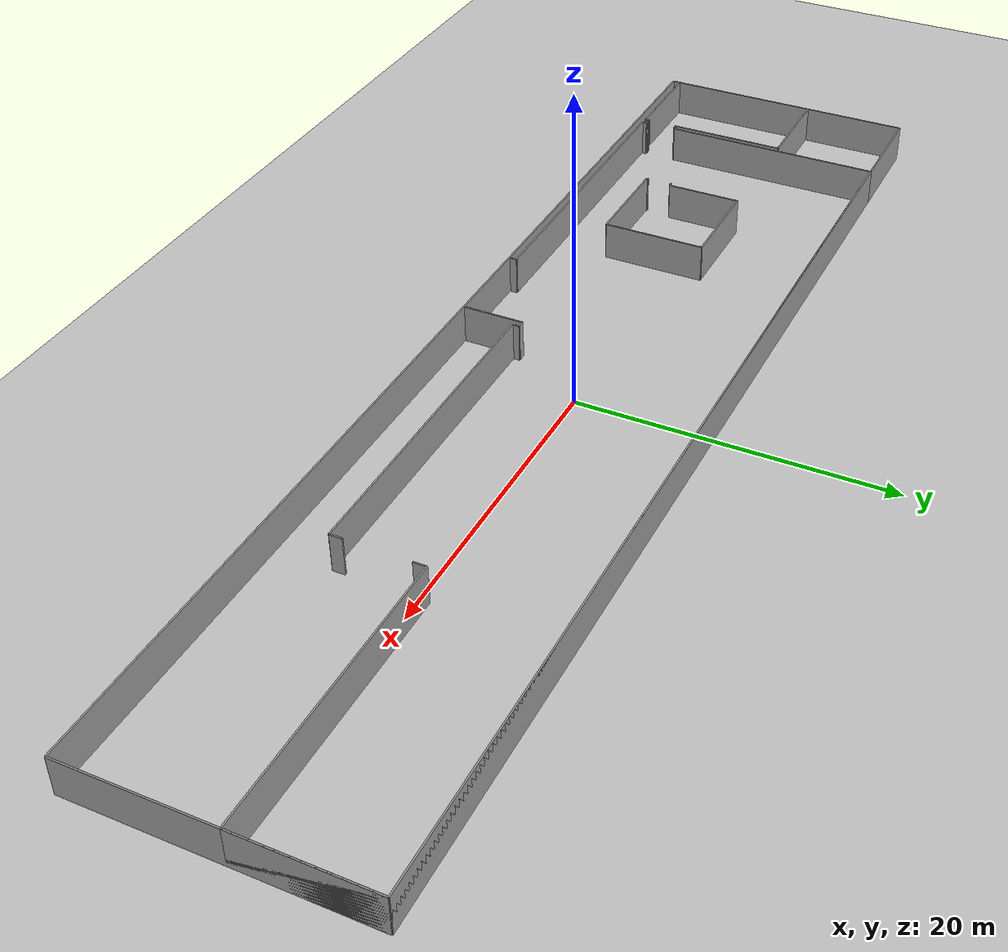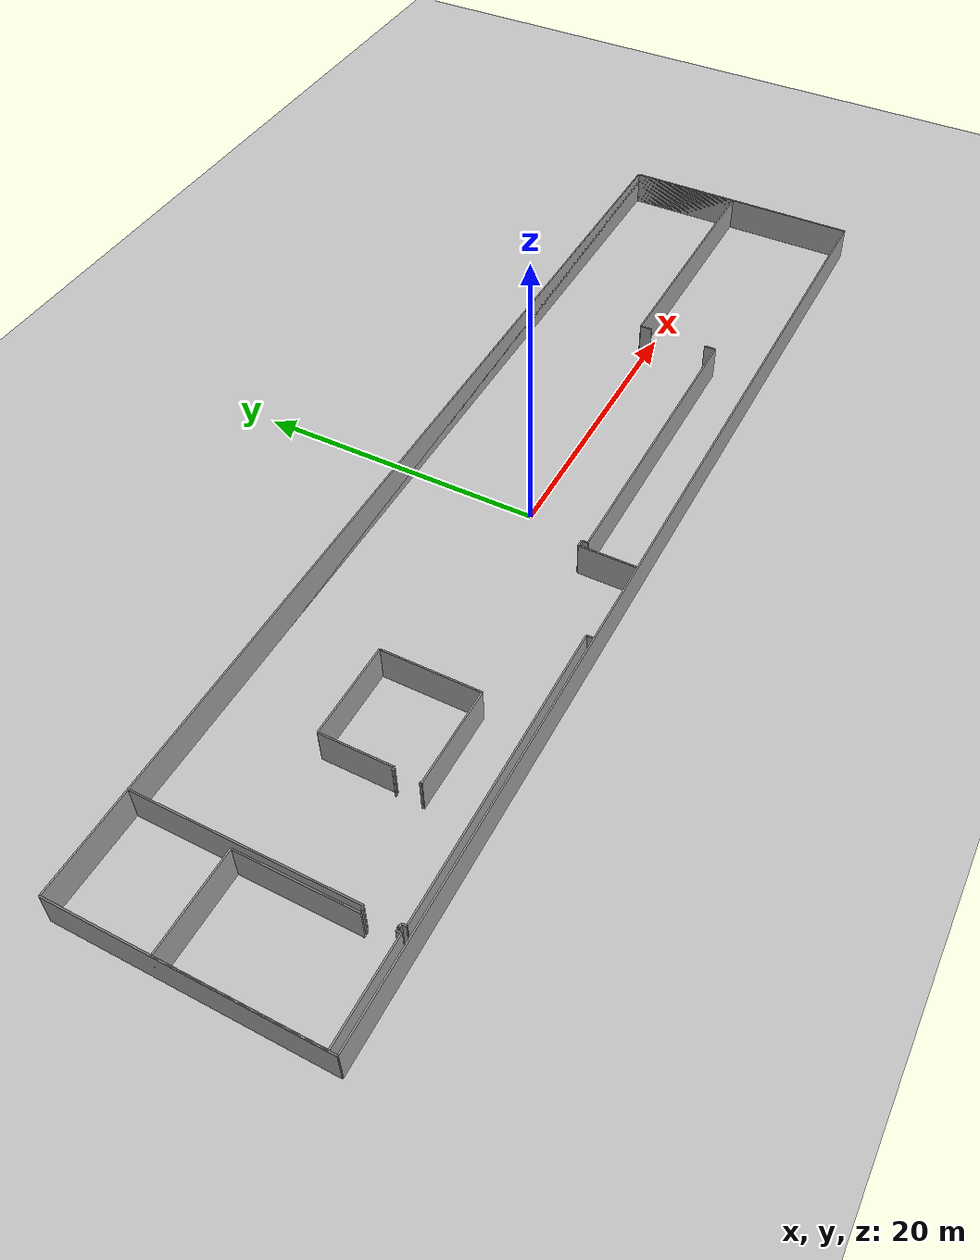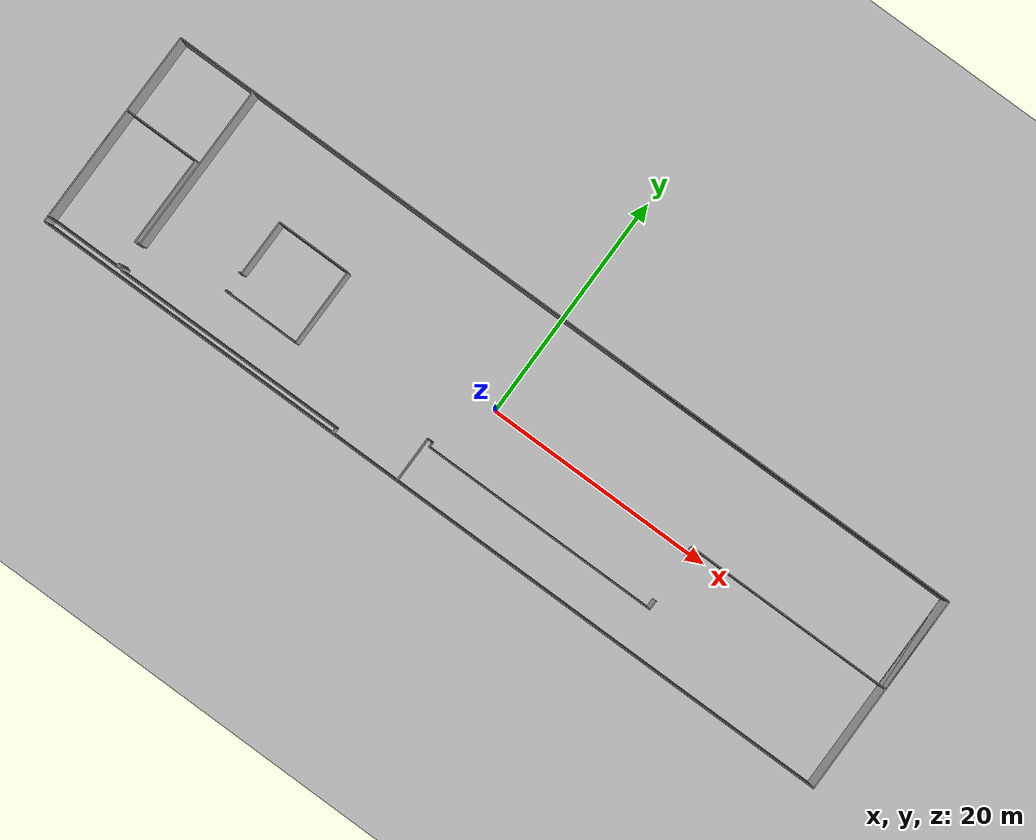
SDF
<sdf version="1.6">
  <world name="default">
    <light name="sun" type="directional">
      <cast_shadows>1</cast_shadows>
      <pose frame="">0 0 10 0 -0 0</pose>
      <diffuse>0.8 0.8 0.8 1</diffuse>
      <specular>0.1 0.1 0.1 1</specular>
      <attenuation>
        <range>1000</range>
        <constant>0.9</constant>
        <linear>0.01</linear>
        <quadratic>0.001</quadratic>
      </attenuation>
      <direction>-0.5 0.5 -1</direction>
    </light>
    <model name="ground_plane">
      <static>1</static>
      <link name="link">
        <collision name="collision">
          <geometry>
            <plane>
              <normal>0 0 1</normal>
              <size>100 100</size>
            </plane>
          </geometry>
          <surface>
            <friction>
              <ode>
                <mu>100</mu>
                <mu2>50</mu2>
              </ode>
              <torsional>
                <ode />
              </torsional>
            </friction>
            <contact>
              <ode />
            </contact>
            <bounce />
          </surface>
          <max_contacts>10</max_contacts>
        </collision>
        <visual name="visual">
          <cast_shadows>0</cast_shadows>
          <geometry>
            <plane>
              <normal>0 0 1</normal>
              <size>100 100</size>
            </plane>
          </geometry>
          <material>
            <script>
              <uri>file://media/materials/scripts/gazebo.material</uri>
              <name>Gazebo/Grey</name>
            </script>
          </material>
        </visual>
        <self_collide>0</self_collide>
        <kinematic>0</kinematic>
        <gravity>1</gravity>
      </link>
    </model>
    <gravity>0 0 -9.8</gravity>
    <magnetic_field>6e-06 2.3e-05 -4.2e-05</magnetic_field>
    <atmosphere type="adiabatic" />
    <physics default="0" name="default_physics" type="ode">
      <max_step_size>0.001</max_step_size>
      <real_time_factor>1</real_time_factor>
      <real_time_update_rate>1000</real_time_update_rate>
    </physics>
    <scene>
      <ambient>0.4 0.4 0.4 1</ambient>
      <background>0.7 0.7 0.7 1</background>
      <shadows>1</shadows>
    </scene>
    <spherical_coordinates>
      <surface_model>EARTH_WGS84</surface_model>
      <latitude_deg>0</latitude_deg>
      <longitude_deg>0</longitude_deg>
      <elevation>0</elevation>
      <heading_deg>0</heading_deg>
    </spherical_coordinates>
  <model name="50052755">
		<static>1</static>
		<link name="Wall_0">
			<collision name="Wall_0_Collision">
				<geometry>
					<box>
						<size>6.49363338176 0.1 2.5</size>
					</box>
				</geometry>
				<pose frame="">3.24681669088 0 1.25 0 0 0</pose>
			</collision>
			<visual name="Wall_0_Visual">
				<pose frame="">3.24681669088 0 1.25 0 0 0</pose>
				<geometry>
					<box>
						<size>6.49363338176 0.1 2.5</size>
					</box>
				</geometry>
				<material>
					<script>
						<uri>file://media/materials/scripts/gazebo.material</uri>
						<name>Gazebo/Grey</name>
					</script>
					<ambient>1 1 1 1</ambient>
				</material>
			</visual>
			<pose frame="">0.014211484656 -16.9747302038 0 0 0 0.0</pose>
		</link>
		<link name="Wall_1">
			<collision name="Wall_1_Collision">
				<geometry>
					<box>
						<size>0.318743298714 0.1 2.5</size>
					</box>
				</geometry>
				<pose frame="">0.159371649357 0 1.25 0 0 0</pose>
			</collision>
			<visual name="Wall_1_Visual">
				<pose frame="">0.159371649357 0 1.25 0 0 0</pose>
				<geometry>
					<box>
						<size>0.318743298714 0.1 2.5</size>
					</box>
				</geometry>
				<material>
					<script>
						<uri>file://media/materials/scripts/gazebo.material</uri>
						<name>Gazebo/Grey</name>
					</script>
					<ambient>1 1 1 1</ambient>
				</material>
			</visual>
			<pose frame="">6.50784486642 -16.9747302038 0 0 0 1.57079632679</pose>
		</link>
		<link name="Wall_2">
			<collision name="Wall_2_Collision">
				<geometry>
					<box>
						<size>7.79093890965 0.1 2.5</size>
					</box>
				</geometry>
				<pose frame="">3.89546945482 0 1.25 0 0 0</pose>
			</collision>
			<visual name="Wall_2_Visual">
				<pose frame="">3.89546945482 0 1.25 0 0 0</pose>
				<geometry>
					<box>
						<size>7.79093890965 0.1 2.5</size>
					</box>
				</geometry>
				<material>
					<script>
						<uri>file://media/materials/scripts/gazebo.material</uri>
						<name>Gazebo/Grey</name>
					</script>
					<ambient>1 1 1 1</ambient>
				</material>
			</visual>
			<pose frame="">6.50784486642 -14.6781796611 0 0 0 1.57079632679</pose>
		</link>
		<link name="Wall_3">
			<collision name="Wall_3_Collision">
				<geometry>
					<box>
						<size>6.50784486642 0.1 2.5</size>
					</box>
				</geometry>
				<pose frame="">3.25392243321 0 1.25 0 0 0</pose>
			</collision>
			<visual name="Wall_3_Visual">
				<pose frame="">3.25392243321 0 1.25 0 0 0</pose>
				<geometry>
					<box>
						<size>6.50784486642 0.1 2.5</size>
					</box>
				</geometry>
				<material>
					<script>
						<uri>file://media/materials/scripts/gazebo.material</uri>
						<name>Gazebo/Grey</name>
					</script>
					<ambient>1 1 1 1</ambient>
				</material>
			</visual>
			<pose frame="">6.50784486642 -6.88724075143 0 0 0 3.14159265359</pose>
		</link>
		<link name="Wall_4">
			<collision name="Wall_4_Collision">
				<geometry>
					<box>
						<size>10.0874994631 0.1 2.5</size>
					</box>
				</geometry>
				<pose frame="">5.04374973157 0 1.25 0 0 0</pose>
			</collision>
			<visual name="Wall_4_Visual">
				<pose frame="">5.04374973157 0 1.25 0 0 0</pose>
				<geometry>
					<box>
						<size>10.0874994631 0.1 2.5</size>
					</box>
				</geometry>
				<material>
					<script>
						<uri>file://media/materials/scripts/gazebo.material</uri>
						<name>Gazebo/Grey</name>
					</script>
					<ambient>1 1 1 1</ambient>
				</material>
			</visual>
			<pose frame="">0.0 -6.88724075143 0 0 0 -1.56938750497</pose>
		</link>
		<link name="Wall_5">
			<collision name="Wall_5_Collision">
				<geometry>
					<box>
						<size>0.114199430272 0.1 2.5</size>
					</box>
				</geometry>
				<pose frame="">0.0570997151359 0 1.25 0 0 0</pose>
			</collision>
			<visual name="Wall_5_Visual">
				<pose frame="">0.0570997151359 0 1.25 0 0 0</pose>
				<geometry>
					<box>
						<size>0.114199430272 0.1 2.5</size>
					</box>
				</geometry>
				<material>
					<script>
						<uri>file://media/materials/scripts/gazebo.material</uri>
						<name>Gazebo/Grey</name>
					</script>
					<ambient>1 1 1 1</ambient>
				</material>
			</visual>
			<pose frame="">14.3019559825 -13.5472246366 0 0 0 1.57079632679</pose>
		</link>
		<link name="Wall_6">
			<collision name="Wall_6_Collision">
				<geometry>
					<box>
						<size>0.101510604686 0.1 2.5</size>
					</box>
				</geometry>
				<pose frame="">0.050755302343 0 1.25 0 0 0</pose>
			</collision>
			<visual name="Wall_6_Visual">
				<pose frame="">0.050755302343 0 1.25 0 0 0</pose>
				<geometry>
					<box>
						<size>0.101510604686 0.1 2.5</size>
					</box>
				</geometry>
				<material>
					<script>
						<uri>file://media/materials/scripts/gazebo.material</uri>
						<name>Gazebo/Grey</name>
					</script>
					<ambient>1 1 1 1</ambient>
				</material>
			</visual>
			<pose frame="">14.3019559825 -11.8596108337 0 0 0 1.57079632679</pose>
		</link>
		<link name="Wall_7">
			<collision name="Wall_7_Collision">
				<geometry>
					<box>
						<size>0.203021209372 0.1 2.5</size>
					</box>
				</geometry>
				<pose frame="">0.101510604686 0 1.25 0 0 0</pose>
			</collision>
			<visual name="Wall_7_Visual">
				<pose frame="">0.101510604686 0 1.25 0 0 0</pose>
				<geometry>
					<box>
						<size>0.203021209372 0.1 2.5</size>
					</box>
				</geometry>
				<material>
					<script>
						<uri>file://media/materials/scripts/gazebo.material</uri>
						<name>Gazebo/Grey</name>
					</script>
					<ambient>1 1 1 1</ambient>
				</material>
			</visual>
			<pose frame="">14.3019559825 -11.758100229 0 0 0 0.0</pose>
		</link>
		<link name="Wall_8">
			<collision name="Wall_8_Collision">
				<geometry>
					<box>
						<size>4.87250902493 0.1 2.5</size>
					</box>
				</geometry>
				<pose frame="">2.43625451246 0 1.25 0 0 0</pose>
			</collision>
			<visual name="Wall_8_Visual">
				<pose frame="">2.43625451246 0 1.25 0 0 0</pose>
				<geometry>
					<box>
						<size>4.87250902493 0.1 2.5</size>
					</box>
				</geometry>
				<material>
					<script>
						<uri>file://media/materials/scripts/gazebo.material</uri>
						<name>Gazebo/Grey</name>
					</script>
					<ambient>1 1 1 1</ambient>
				</material>
			</visual>
			<pose frame="">14.5049771918 -11.758100229 0 0 0 1.57079632679</pose>
		</link>
		<link name="Wall_9">
			<collision name="Wall_9_Collision">
				<geometry>
					<box>
						<size>6.44592339756 0.1 2.5</size>
					</box>
				</geometry>
				<pose frame="">3.22296169878 0 1.25 0 0 0</pose>
			</collision>
			<visual name="Wall_9_Visual">
				<pose frame="">3.22296169878 0 1.25 0 0 0</pose>
				<geometry>
					<box>
						<size>6.44592339756 0.1 2.5</size>
					</box>
				</geometry>
				<material>
					<script>
						<uri>file://media/materials/scripts/gazebo.material</uri>
						<name>Gazebo/Grey</name>
					</script>
					<ambient>1 1 1 1</ambient>
				</material>
			</visual>
			<pose frame="">14.5049771918 -6.88559120411 0 0 0 0.0</pose>
		</link>
		<link name="Wall_10">
			<collision name="Wall_10_Collision">
				<geometry>
					<box>
						<size>6.68701108369 0.1 2.5</size>
					</box>
				</geometry>
				<pose frame="">3.34350554184 0 1.25 0 0 0</pose>
			</collision>
			<visual name="Wall_10_Visual">
				<pose frame="">3.34350554184 0 1.25 0 0 0</pose>
				<geometry>
					<box>
						<size>6.68701108369 0.1 2.5</size>
					</box>
				</geometry>
				<material>
					<script>
						<uri>file://media/materials/scripts/gazebo.material</uri>
						<name>Gazebo/Grey</name>
					</script>
					<ambient>1 1 1 1</ambient>
				</material>
			</visual>
			<pose frame="">20.9509005894 -6.88559120411 0 0 0 -1.57079632679</pose>
		</link>
		<link name="Wall_11">
			<collision name="Wall_11_Collision">
				<geometry>
					<box>
						<size>6.64899303739 0.1 2.5</size>
					</box>
				</geometry>
				<pose frame="">3.32449651869 0 1.25 0 0 0</pose>
			</collision>
			<visual name="Wall_11_Visual">
				<pose frame="">3.32449651869 0 1.25 0 0 0</pose>
				<geometry>
					<box>
						<size>6.64899303739 0.1 2.5</size>
					</box>
				</geometry>
				<material>
					<script>
						<uri>file://media/materials/scripts/gazebo.material</uri>
						<name>Gazebo/Grey</name>
					</script>
					<ambient>1 1 1 1</ambient>
				</material>
			</visual>
			<pose frame="">20.9509005894 -13.5726022878 0 0 0 3.13777587823</pose>
		</link>
		<link name="Wall_12">
			<collision name="Wall_12_Collision">
				<geometry>
					<box>
						<size>0.291842988472 0.1 2.5</size>
					</box>
				</geometry>
				<pose frame="">0.145921494236 0 1.25 0 0 0</pose>
			</collision>
			<visual name="Wall_12_Visual">
				<pose frame="">0.145921494236 0 1.25 0 0 0</pose>
				<geometry>
					<box>
						<size>0.291842988472 0.1 2.5</size>
					</box>
				</geometry>
				<material>
					<script>
						<uri>file://media/materials/scripts/gazebo.material</uri>
						<name>Gazebo/Grey</name>
					</script>
					<ambient>1 1 1 1</ambient>
				</material>
			</visual>
			<pose frame="">6.94560934913 -17.0207906407 0 0 0 1.57079632679</pose>
		</link>
		<link name="Wall_13">
			<collision name="Wall_13_Collision">
				<geometry>
					<box>
						<size>0.218882241354 0.1 2.5</size>
					</box>
				</geometry>
				<pose frame="">0.109441120677 0 1.25 0 0 0</pose>
			</collision>
			<visual name="Wall_13_Visual">
				<pose frame="">0.109441120677 0 1.25 0 0 0</pose>
				<geometry>
					<box>
						<size>0.218882241354 0.1 2.5</size>
					</box>
				</geometry>
				<material>
					<script>
						<uri>file://media/materials/scripts/gazebo.material</uri>
						<name>Gazebo/Grey</name>
					</script>
					<ambient>1 1 1 1</ambient>
				</material>
			</visual>
			<pose frame="">6.94560934913 -16.7289476523 0 0 0 3.14159265359</pose>
		</link>
		<link name="Wall_14">
			<collision name="Wall_14_Collision">
				<geometry>
					<box>
						<size>0.111027223875 0.1 2.5</size>
					</box>
				</geometry>
				<pose frame="">0.0555136119376 0 1.25 0 0 0</pose>
			</collision>
			<visual name="Wall_14_Visual">
				<pose frame="">0.0555136119376 0 1.25 0 0 0</pose>
				<geometry>
					<box>
						<size>0.111027223875 0.1 2.5</size>
					</box>
				</geometry>
				<material>
					<script>
						<uri>file://media/materials/scripts/gazebo.material</uri>
						<name>Gazebo/Grey</name>
					</script>
					<ambient>1 1 1 1</ambient>
				</material>
			</visual>
			<pose frame="">6.72672710777 -16.7289476523 0 0 0 1.57079632679</pose>
		</link>
		<link name="Wall_15">
			<collision name="Wall_15_Collision">
				<geometry>
					<box>
						<size>0.134374662953 0.1 2.5</size>
					</box>
				</geometry>
				<pose frame="">0.0671873314765 0 1.25 0 0 0</pose>
			</collision>
			<visual name="Wall_15_Visual">
				<pose frame="">0.0671873314765 0 1.25 0 0 0</pose>
				<geometry>
					<box>
						<size>0.134374662953 0.1 2.5</size>
					</box>
				</geometry>
				<material>
					<script>
						<uri>file://media/materials/scripts/gazebo.material</uri>
						<name>Gazebo/Grey</name>
					</script>
					<ambient>1 1 1 1</ambient>
				</material>
			</visual>
			<pose frame="">6.72672710777 -14.6852854034 0 0 0 1.57079632679</pose>
		</link>
		<link name="Wall_16">
			<collision name="Wall_16_Collision">
				<geometry>
					<box>
						<size>0.189951719019 0.1 2.5</size>
					</box>
				</geometry>
				<pose frame="">0.0949758595093 0 1.25 0 0 0</pose>
			</collision>
			<visual name="Wall_16_Visual">
				<pose frame="">0.0949758595093 0 1.25 0 0 0</pose>
				<geometry>
					<box>
						<size>0.189951719019 0.1 2.5</size>
					</box>
				</geometry>
				<material>
					<script>
						<uri>file://media/materials/scripts/gazebo.material</uri>
						<name>Gazebo/Grey</name>
					</script>
					<ambient>1 1 1 1</ambient>
				</material>
			</visual>
			<pose frame="">6.72672710777 -14.5509107405 0 0 0 0.0</pose>
		</link>
		<link name="Wall_17">
			<collision name="Wall_17_Collision">
				<geometry>
					<box>
						<size>14.5509107405 0.1 2.5</size>
					</box>
				</geometry>
				<pose frame="">7.27545537023 0 1.25 0 0 0</pose>
			</collision>
			<visual name="Wall_17_Visual">
				<pose frame="">7.27545537023 0 1.25 0 0 0</pose>
				<geometry>
					<box>
						<size>14.5509107405 0.1 2.5</size>
					</box>
				</geometry>
				<material>
					<script>
						<uri>file://media/materials/scripts/gazebo.material</uri>
						<name>Gazebo/Grey</name>
					</script>
					<ambient>1 1 1 1</ambient>
				</material>
			</visual>
			<pose frame="">6.91667882679 -14.5509107405 0 0 0 1.57079632679</pose>
		</link>
		<link name="Wall_18">
			<collision name="Wall_18_Collision">
				<geometry>
					<box>
						<size>65.7373793769 0.1 2.5</size>
					</box>
				</geometry>
				<pose frame="">32.8686896884 0 1.25 0 0 0</pose>
			</collision>
			<visual name="Wall_18_Visual">
				<pose frame="">32.8686896884 0 1.25 0 0 0</pose>
				<geometry>
					<box>
						<size>65.7373793769 0.1 2.5</size>
					</box>
				</geometry>
				<material>
					<script>
						<uri>file://media/materials/scripts/gazebo.material</uri>
						<name>Gazebo/Grey</name>
					</script>
					<ambient>1 1 1 1</ambient>
				</material>
			</visual>
			<pose frame="">6.91667882679 -0.0 0 0 0 0.0</pose>
		</link>
		<link name="Wall_19">
			<collision name="Wall_19_Collision">
				<geometry>
					<box>
						<size>8.20497528851 0.1 2.5</size>
					</box>
				</geometry>
				<pose frame="">4.10248764426 0 1.25 0 0 0</pose>
			</collision>
			<visual name="Wall_19_Visual">
				<pose frame="">4.10248764426 0 1.25 0 0 0</pose>
				<geometry>
					<box>
						<size>8.20497528851 0.1 2.5</size>
					</box>
				</geometry>
				<material>
					<script>
						<uri>file://media/materials/scripts/gazebo.material</uri>
						<name>Gazebo/Grey</name>
					</script>
					<ambient>1 1 1 1</ambient>
				</material>
			</visual>
			<pose frame="">72.6540582036 -0.0 0 0 0 -1.57079632679</pose>
		</link>
		<link name="Wall_20">
			<collision name="Wall_20_Collision">
				<geometry>
					<box>
						<size>17.9607788401 0.1 2.5</size>
					</box>
				</geometry>
				<pose frame="">8.98038942006 0 1.25 0 0 0</pose>
			</collision>
			<visual name="Wall_20_Visual">
				<pose frame="">8.98038942006 0 1.25 0 0 0</pose>
				<geometry>
					<box>
						<size>17.9607788401 0.1 2.5</size>
					</box>
				</geometry>
				<material>
					<script>
						<uri>file://media/materials/scripts/gazebo.material</uri>
						<name>Gazebo/Grey</name>
					</script>
					<ambient>1 1 1 1</ambient>
				</material>
			</visual>
			<pose frame="">72.6540582036 -8.20497528851 0 0 0 3.14159265359</pose>
		</link>
		<link name="Wall_21">
			<collision name="Wall_21_Collision">
				<geometry>
					<box>
						<size>0.819317468072 0.1 2.5</size>
					</box>
				</geometry>
				<pose frame="">0.409658734036 0 1.25 0 0 0</pose>
			</collision>
			<visual name="Wall_21_Visual">
				<pose frame="">0.409658734036 0 1.25 0 0 0</pose>
				<geometry>
					<box>
						<size>0.819317468072 0.1 2.5</size>
					</box>
				</geometry>
				<material>
					<script>
						<uri>file://media/materials/scripts/gazebo.material</uri>
						<name>Gazebo/Grey</name>
					</script>
					<ambient>1 1 1 1</ambient>
				</material>
			</visual>
			<pose frame="">54.6932793635 -8.20497528851 0 0 0 -1.57079632679</pose>
		</link>
		<link name="Wall_22">
			<collision name="Wall_22_Collision">
				<geometry>
					<box>
						<size>0.802568218299 0.1 2.5</size>
					</box>
				</geometry>
				<pose frame="">0.401284109149 0 1.25 0 0 0</pose>
			</collision>
			<visual name="Wall_22_Visual">
				<pose frame="">0.401284109149 0 1.25 0 0 0</pose>
				<geometry>
					<box>
						<size>0.802568218299 0.1 2.5</size>
					</box>
				</geometry>
				<material>
					<script>
						<uri>file://media/materials/scripts/gazebo.material</uri>
						<name>Gazebo/Grey</name>
					</script>
					<ambient>1 1 1 1</ambient>
				</material>
			</visual>
			<pose frame="">54.6932793635 -13.1246867446 0 0 0 -1.57079632679</pose>
		</link>
		<link name="Wall_23">
			<collision name="Wall_23_Collision">
				<geometry>
					<box>
						<size>20.8419035776 0.1 2.5</size>
					</box>
				</geometry>
				<pose frame="">10.4209517888 0 1.25 0 0 0</pose>
			</collision>
			<visual name="Wall_23_Visual">
				<pose frame="">10.4209517888 0 1.25 0 0 0</pose>
				<geometry>
					<box>
						<size>20.8419035776 0.1 2.5</size>
					</box>
				</geometry>
				<material>
					<script>
						<uri>file://media/materials/scripts/gazebo.material</uri>
						<name>Gazebo/Grey</name>
					</script>
					<ambient>1 1 1 1</ambient>
				</material>
			</visual>
			<pose frame="">54.6932793635 -13.9272549629 0 0 0 3.14159265359</pose>
		</link>
		<link name="Wall_24">
			<collision name="Wall_24_Collision">
				<geometry>
					<box>
						<size>0.419492573865 0.1 2.5</size>
					</box>
				</geometry>
				<pose frame="">0.209746286932 0 1.25 0 0 0</pose>
			</collision>
			<visual name="Wall_24_Visual">
				<pose frame="">0.209746286932 0 1.25 0 0 0</pose>
				<geometry>
					<box>
						<size>0.419492573865 0.1 2.5</size>
					</box>
				</geometry>
				<material>
					<script>
						<uri>file://media/materials/scripts/gazebo.material</uri>
						<name>Gazebo/Grey</name>
					</script>
					<ambient>1 1 1 1</ambient>
				</material>
			</visual>
			<pose frame="">33.8513757859 -13.9272549629 0 0 0 1.57079632679</pose>
		</link>
		<link name="Wall_25">
			<collision name="Wall_25_Collision">
				<geometry>
					<box>
						<size>0.453117961667 0.1 2.5</size>
					</box>
				</geometry>
				<pose frame="">0.226558980834 0 1.25 0 0 0</pose>
			</collision>
			<visual name="Wall_25_Visual">
				<pose frame="">0.226558980834 0 1.25 0 0 0</pose>
				<geometry>
					<box>
						<size>0.453117961667 0.1 2.5</size>
					</box>
				</geometry>
				<material>
					<script>
						<uri>file://media/materials/scripts/gazebo.material</uri>
						<name>Gazebo/Grey</name>
					</script>
					<ambient>1 1 1 1</ambient>
				</material>
			</visual>
			<pose frame="">33.8513757859 -13.5077623891 0 0 0 3.14159265359</pose>
		</link>
		<link name="Wall_26">
			<collision name="Wall_26_Collision">
				<geometry>
					<box>
						<size>3.97299817915 0.1 2.5</size>
					</box>
				</geometry>
				<pose frame="">1.98649908958 0 1.25 0 0 0</pose>
			</collision>
			<visual name="Wall_26_Visual">
				<pose frame="">1.98649908958 0 1.25 0 0 0</pose>
				<geometry>
					<box>
						<size>3.97299817915 0.1 2.5</size>
					</box>
				</geometry>
				<material>
					<script>
						<uri>file://media/materials/scripts/gazebo.material</uri>
						<name>Gazebo/Grey</name>
					</script>
					<ambient>1 1 1 1</ambient>
				</material>
			</visual>
			<pose frame="">33.3982578242 -13.5077623891 0 0 0 -1.57079632679</pose>
		</link>
		<link name="Wall_27">
			<collision name="Wall_27_Collision">
				<geometry>
					<box>
						<size>0.494864197844 0.1 2.5</size>
					</box>
				</geometry>
				<pose frame="">0.247432098922 0 1.25 0 0 0</pose>
			</collision>
			<visual name="Wall_27_Visual">
				<pose frame="">0.247432098922 0 1.25 0 0 0</pose>
				<geometry>
					<box>
						<size>0.494864197844 0.1 2.5</size>
					</box>
				</geometry>
				<material>
					<script>
						<uri>file://media/materials/scripts/gazebo.material</uri>
						<name>Gazebo/Grey</name>
					</script>
					<ambient>1 1 1 1</ambient>
				</material>
			</visual>
			<pose frame="">27.2699357311 -17.4807605682 0 0 0 1.57079632679</pose>
		</link>
		<link name="Wall_28">
			<collision name="Wall_28_Collision">
				<geometry>
					<box>
						<size>20.3243563365 0.1 2.5</size>
					</box>
				</geometry>
				<pose frame="">10.1621781682 0 1.25 0 0 0</pose>
			</collision>
			<visual name="Wall_28_Visual">
				<pose frame="">10.1621781682 0 1.25 0 0 0</pose>
				<geometry>
					<box>
						<size>20.3243563365 0.1 2.5</size>
					</box>
				</geometry>
				<material>
					<script>
						<uri>file://media/materials/scripts/gazebo.material</uri>
						<name>Gazebo/Grey</name>
					</script>
					<ambient>1 1 1 1</ambient>
				</material>
			</visual>
			<pose frame="">27.2699357311 -16.9858963704 0 0 0 -3.13987578311</pose>
		</link>
		<link name="Wall_29">
			<collision name="Wall_29_Collision">
				<geometry>
					<box>
						<size>17.4807605682 0.1 2.5</size>
					</box>
				</geometry>
				<pose frame="">8.7403802841 0 1.25 0 0 0</pose>
			</collision>
			<visual name="Wall_29_Visual">
				<pose frame="">8.7403802841 0 1.25 0 0 0</pose>
				<geometry>
					<box>
						<size>17.4807605682 0.1 2.5</size>
					</box>
				</geometry>
				<material>
					<script>
						<uri>file://media/materials/scripts/gazebo.material</uri>
						<name>Gazebo/Grey</name>
					</script>
					<ambient>1 1 1 1</ambient>
				</material>
			</visual>
			<pose frame="">72.6540582036 -17.4807605682 0 0 0 1.57079632679</pose>
		</link>
		<link name="Wall_30">
			<collision name="Wall_30_Collision">
				<geometry>
					<box>
						<size>72.6540582036 0.1 2.5</size>
					</box>
				</geometry>
				<pose frame="">36.3270291018 0 1.25 0 0 0</pose>
			</collision>
			<visual name="Wall_30_Visual">
				<pose frame="">36.3270291018 0 1.25 0 0 0</pose>
				<geometry>
					<box>
						<size>72.6540582036 0.1 2.5</size>
					</box>
				</geometry>
				<material>
					<script>
						<uri>file://media/materials/scripts/gazebo.material</uri>
						<name>Gazebo/Grey</name>
					</script>
					<ambient>1 1 1 1</ambient>
				</material>
			</visual>
			<pose frame="">72.6540582036 -17.4807605682 0 0 0 3.14159265359</pose>
		</link>
		<link name="Wall_31">
			<collision name="Wall_31_Collision">
				<geometry>
					<box>
						<size>17.4807605682 0.1 2.5</size>
					</box>
				</geometry>
				<pose frame="">8.7403802841 0 1.25 0 0 0</pose>
			</collision>
			<visual name="Wall_31_Visual">
				<pose frame="">8.7403802841 0 1.25 0 0 0</pose>
				<geometry>
					<box>
						<size>17.4807605682 0.1 2.5</size>
					</box>
				</geometry>
				<material>
					<script>
						<uri>file://media/materials/scripts/gazebo.material</uri>
						<name>Gazebo/Grey</name>
					</script>
					<ambient>1 1 1 1</ambient>
				</material>
			</visual>
			<pose frame="">0.0 -17.4807605682 0 0 0 1.57079632679</pose>
		</link>
		<link name="Wall_32">
			<collision name="Wall_32_Collision">
				<geometry>
					<box>
						<size>72.6540582036 0.1 2.5</size>
					</box>
				</geometry>
				<pose frame="">36.3270291018 0 1.25 0 0 0</pose>
			</collision>
			<visual name="Wall_32_Visual">
				<pose frame="">36.3270291018 0 1.25 0 0 0</pose>
				<geometry>
					<box>
						<size>72.6540582036 0.1 2.5</size>
					</box>
				</geometry>
				<material>
					<script>
						<uri>file://media/materials/scripts/gazebo.material</uri>
						<name>Gazebo/Grey</name>
					</script>
					<ambient>1 1 1 1</ambient>
				</material>
			</visual>
			<pose frame="">0.0 -0.0 0 0 0 0.0</pose>
		</link>
		<pose frame="">-36.3 8.73076056821 0 0 0 0</pose>
	</model>
</world>
</sdf>
